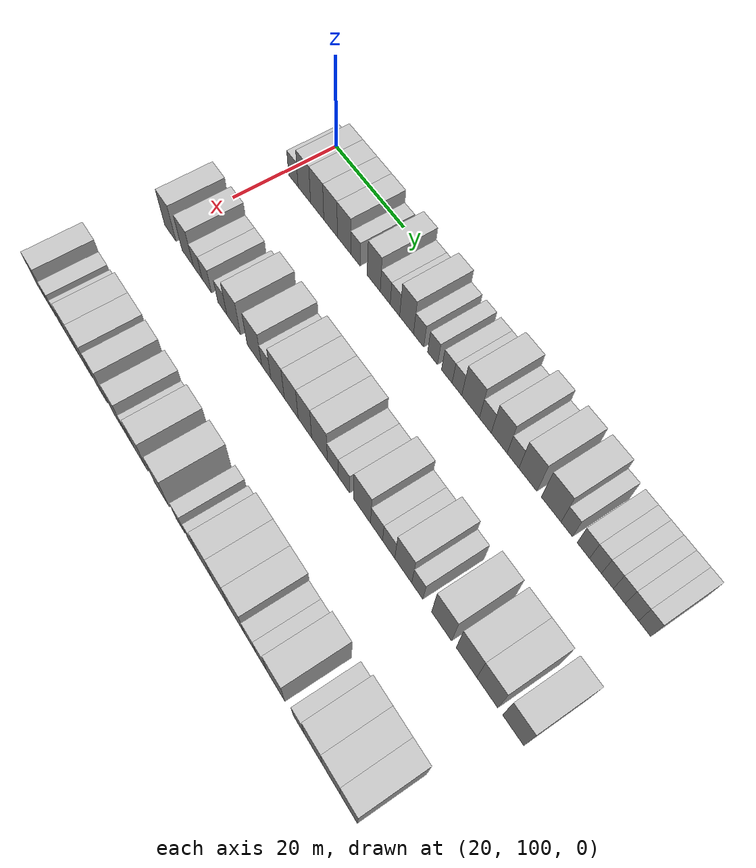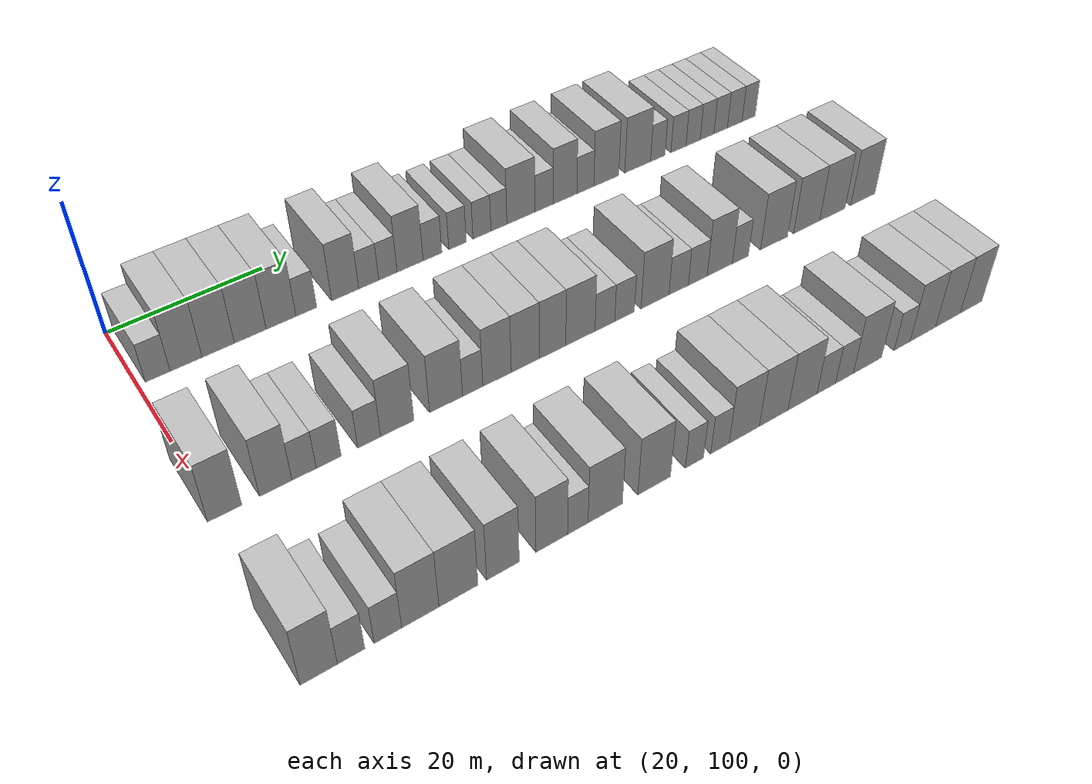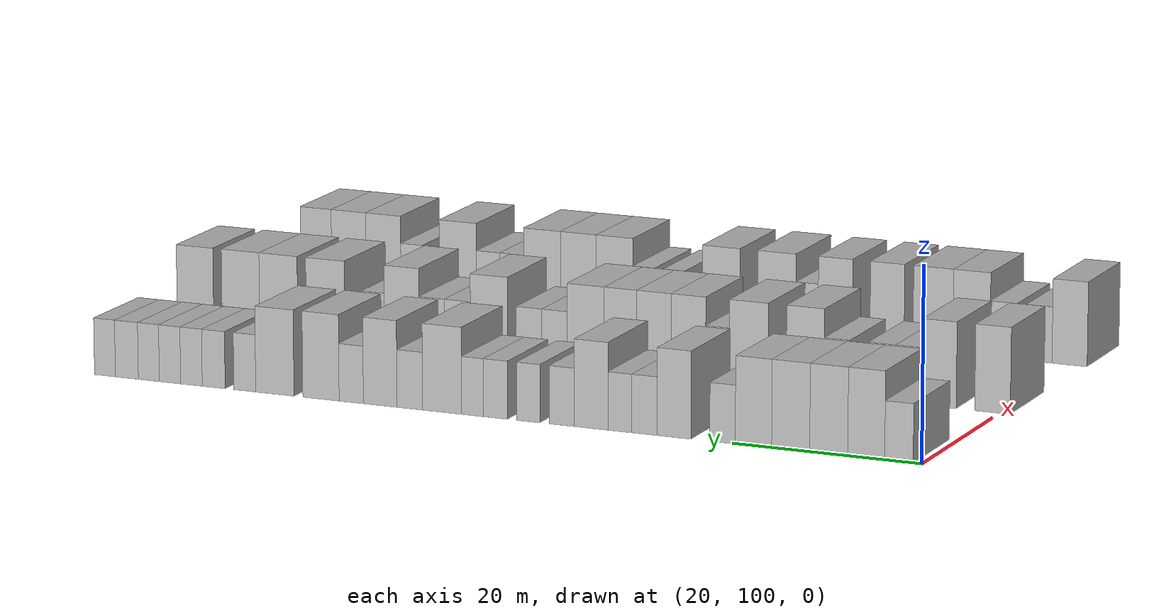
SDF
<sdf version="1.6">
 <world name="default">
  <model name="building_125">
   <static>1</static>
   <pose>25.0000 102.4084 0 0.000000 0.000000 0.000000</pose>
   <link name="link">
    <pose>0 0 3.00 0 0 0</pose>
    <collision name="collision"><geometry><box><size>10.0000 2.9845 6.0000</size></box></geometry></collision>
    <visual name="visual">
     <cast_shadows>0</cast_shadows>
     <geometry><box><size>10.0000 2.9845 6.0000</size></box></geometry>
     <material>
      <script>
       <uri>model://HANNAS_wall/materials/scripts</uri>
       <uri>model://HANNAS_wall/materials/textures</uri>
       <name>vrc/HANNAS_wall</name>
      </script>
     </material>
    </visual>
   </link>
  </model>
  <model name="building_126">
   <static>1</static>
   <pose>25.0000 105.8466 0 0.000000 0.000000 0.000000</pose>
   <link name="link">
    <pose>0 0 4.50 0 0 0</pose>
    <collision name="collision"><geometry><box><size>10.0000 3.8920 9.0000</size></box></geometry></collision>
    <visual name="visual">
     <cast_shadows>0</cast_shadows>
     <geometry><box><size>10.0000 3.8920 9.0000</size></box></geometry>
     <material>
      <script>
       <uri>model://HANNAS_wall/materials/scripts</uri>
       <uri>model://HANNAS_wall/materials/textures</uri>
       <name>vrc/HANNAS_wall</name>
      </script>
     </material>
    </visual>
   </link>
  </model>
  <model name="building_127">
   <static>1</static>
   <pose>25.0000 109.8051 0 0.000000 0.000000 0.000000</pose>
   <link name="link">
    <pose>0 0 4.50 0 0 0</pose>
    <collision name="collision"><geometry><box><size>10.0000 4.0249 9.0000</size></box></geometry></collision>
    <visual name="visual">
     <cast_shadows>0</cast_shadows>
     <geometry><box><size>10.0000 4.0249 9.0000</size></box></geometry>
     <material>
      <script>
       <uri>model://HANNAS_wall/materials/scripts</uri>
       <uri>model://HANNAS_wall/materials/textures</uri>
       <name>vrc/HANNAS_wall</name>
      </script>
     </material>
    </visual>
   </link>
  </model>
  <model name="building_128">
   <static>1</static>
   <pose>25.0000 113.8377 0 0.000000 0.000000 0.000000</pose>
   <link name="link">
    <pose>0 0 4.50 0 0 0</pose>
    <collision name="collision"><geometry><box><size>10.0000 4.0403 9.0000</size></box></geometry></collision>
    <visual name="visual">
     <cast_shadows>0</cast_shadows>
     <geometry><box><size>10.0000 4.0403 9.0000</size></box></geometry>
     <material>
      <script>
       <uri>model://HANNAS_wall/materials/scripts</uri>
       <uri>model://HANNAS_wall/materials/textures</uri>
       <name>vrc/HANNAS_wall</name>
      </script>
     </material>
    </visual>
   </link>
  </model>
  <model name="building_129">
   <static>1</static>
   <pose>25.0000 117.7990 0 0.000000 0.000000 0.000000</pose>
   <link name="link">
    <pose>0 0 4.50 0 0 0</pose>
    <collision name="collision"><geometry><box><size>10.0000 3.8824 9.0000</size></box></geometry></collision>
    <visual name="visual">
     <cast_shadows>0</cast_shadows>
     <geometry><box><size>10.0000 3.8824 9.0000</size></box></geometry>
     <material>
      <script>
       <uri>model://HANNAS_wall/materials/scripts</uri>
       <uri>model://HANNAS_wall/materials/textures</uri>
       <name>vrc/HANNAS_wall</name>
      </script>
     </material>
    </visual>
   </link>
  </model>
  <model name="building_130">
   <static>1</static>
   <pose>25.0000 121.1046 0 0.000000 0.000000 0.000000</pose>
   <link name="link">
    <pose>0 0 3.00 0 0 0</pose>
    <collision name="collision"><geometry><box><size>10.0000 2.7288 6.0000</size></box></geometry></collision>
    <visual name="visual">
     <cast_shadows>0</cast_shadows>
     <geometry><box><size>10.0000 2.7288 6.0000</size></box></geometry>
     <material>
      <script>
       <uri>model://HANNAS_wall/materials/scripts</uri>
       <uri>model://HANNAS_wall/materials/textures</uri>
       <name>vrc/HANNAS_wall</name>
      </script>
     </material>
    </visual>
   </link>
  </model>
  <model name="building_131">
   <static>1</static>
   <pose>25.0000 126.3078 0 0.000000 0.000000 0.000000</pose>
   <link name="link">
    <pose>0 0 4.50 0 0 0</pose>
    <collision name="collision"><geometry><box><size>10.0000 3.6775 9.0000</size></box></geometry></collision>
    <visual name="visual">
     <cast_shadows>0</cast_shadows>
     <geometry><box><size>10.0000 3.6775 9.0000</size></box></geometry>
     <material>
      <script>
       <uri>model://HANNAS_wall/materials/scripts</uri>
       <uri>model://HANNAS_wall/materials/textures</uri>
       <name>vrc/HANNAS_wall</name>
      </script>
     </material>
    </visual>
   </link>
  </model>
  <model name="building_132">
   <static>1</static>
   <pose>25.0000 129.5238 0 0.000000 0.000000 0.000000</pose>
   <link name="link">
    <pose>0 0 3.00 0 0 0</pose>
    <collision name="collision"><geometry><box><size>10.0000 2.7546 6.0000</size></box></geometry></collision>
    <visual name="visual">
     <cast_shadows>0</cast_shadows>
     <geometry><box><size>10.0000 2.7546 6.0000</size></box></geometry>
     <material>
      <script>
       <uri>model://HANNAS_wall/materials/scripts</uri>
       <uri>model://HANNAS_wall/materials/textures</uri>
       <name>vrc/HANNAS_wall</name>
      </script>
     </material>
    </visual>
   </link>
  </model>
  <model name="building_133">
   <static>1</static>
   <pose>25.0000 132.1846 0 0.000000 0.000000 0.000000</pose>
   <link name="link">
    <pose>0 0 3.00 0 0 0</pose>
    <collision name="collision"><geometry><box><size>10.0000 2.5670 6.0000</size></box></geometry></collision>
    <visual name="visual">
     <cast_shadows>0</cast_shadows>
     <geometry><box><size>10.0000 2.5670 6.0000</size></box></geometry>
     <material>
      <script>
       <uri>model://HANNAS_wall/materials/scripts</uri>
       <uri>model://HANNAS_wall/materials/textures</uri>
       <name>vrc/HANNAS_wall</name>
      </script>
     </material>
    </visual>
   </link>
  </model>
  <model name="building_134">
   <static>1</static>
   <pose>25.0000 135.3203 0 0.000000 0.000000 0.000000</pose>
   <link name="link">
    <pose>0 0 4.50 0 0 0</pose>
    <collision name="collision"><geometry><box><size>10.0000 3.7045 9.0000</size></box></geometry></collision>
    <visual name="visual">
     <cast_shadows>0</cast_shadows>
     <geometry><box><size>10.0000 3.7045 9.0000</size></box></geometry>
     <material>
      <script>
       <uri>model://HANNAS_wall/materials/scripts</uri>
       <uri>model://HANNAS_wall/materials/textures</uri>
       <name>vrc/HANNAS_wall</name>
      </script>
     </material>
    </visual>
   </link>
  </model>
  <model name="building_135">
   <static>1</static>
   <pose>25.0000 138.5303 0 0.000000 0.000000 0.000000</pose>
   <link name="link">
    <pose>0 0 3.00 0 0 0</pose>
    <collision name="collision"><geometry><box><size>10.0000 2.7154 6.0000</size></box></geometry></collision>
    <visual name="visual">
     <cast_shadows>0</cast_shadows>
     <geometry><box><size>10.0000 2.7154 6.0000</size></box></geometry>
     <material>
      <script>
       <uri>model://HANNAS_wall/materials/scripts</uri>
       <uri>model://HANNAS_wall/materials/textures</uri>
       <name>vrc/HANNAS_wall</name>
      </script>
     </material>
    </visual>
   </link>
  </model>
  <model name="building_136">
   <static>1</static>
   <pose>25.0000 142.1720 0 0.000000 0.000000 0.000000</pose>
   <link name="link">
    <pose>0 0 3.00 0 0 0</pose>
    <collision name="collision"><geometry><box><size>10.0000 2.5681 6.0000</size></box></geometry></collision>
    <visual name="visual">
     <cast_shadows>0</cast_shadows>
     <geometry><box><size>10.0000 2.5681 6.0000</size></box></geometry>
     <material>
      <script>
       <uri>model://HANNAS_wall/materials/scripts</uri>
       <uri>model://HANNAS_wall/materials/textures</uri>
       <name>vrc/HANNAS_wall</name>
      </script>
     </material>
    </visual>
   </link>
  </model>
  <model name="building_137">
   <static>1</static>
   <pose>25.0000 145.7974 0 0.000000 0.000000 0.000000</pose>
   <link name="link">
    <pose>0 0 3.00 0 0 0</pose>
    <collision name="collision"><geometry><box><size>10.0000 2.6828 6.0000</size></box></geometry></collision>
    <visual name="visual">
     <cast_shadows>0</cast_shadows>
     <geometry><box><size>10.0000 2.6828 6.0000</size></box></geometry>
     <material>
      <script>
       <uri>model://HANNAS_wall/materials/scripts</uri>
       <uri>model://HANNAS_wall/materials/textures</uri>
       <name>vrc/HANNAS_wall</name>
      </script>
     </material>
    </visual>
   </link>
  </model>
  <model name="building_138">
   <static>1</static>
   <pose>25.0000 148.3470 0 0.000000 0.000000 0.000000</pose>
   <link name="link">
    <pose>0 0 3.00 0 0 0</pose>
    <collision name="collision"><geometry><box><size>10.0000 2.4164 6.0000</size></box></geometry></collision>
    <visual name="visual">
     <cast_shadows>0</cast_shadows>
     <geometry><box><size>10.0000 2.4164 6.0000</size></box></geometry>
     <material>
      <script>
       <uri>model://HANNAS_wall/materials/scripts</uri>
       <uri>model://HANNAS_wall/materials/textures</uri>
       <name>vrc/HANNAS_wall</name>
      </script>
     </material>
    </visual>
   </link>
  </model>
  <model name="building_139">
   <static>1</static>
   <pose>25.0000 151.7195 0 0.000000 0.000000 0.000000</pose>
   <link name="link">
    <pose>0 0 4.50 0 0 0</pose>
    <collision name="collision"><geometry><box><size>10.0000 4.3285 9.0000</size></box></geometry></collision>
    <visual name="visual">
     <cast_shadows>0</cast_shadows>
     <geometry><box><size>10.0000 4.3285 9.0000</size></box></geometry>
     <material>
      <script>
       <uri>model://HANNAS_wall/materials/scripts</uri>
       <uri>model://HANNAS_wall/materials/textures</uri>
       <name>vrc/HANNAS_wall</name>
      </script>
     </material>
    </visual>
   </link>
  </model>
  <model name="building_140">
   <static>1</static>
   <pose>25.0000 155.3092 0 0.000000 0.000000 0.000000</pose>
   <link name="link">
    <pose>0 0 3.00 0 0 0</pose>
    <collision name="collision"><geometry><box><size>10.0000 2.8510 6.0000</size></box></geometry></collision>
    <visual name="visual">
     <cast_shadows>0</cast_shadows>
     <geometry><box><size>10.0000 2.8510 6.0000</size></box></geometry>
     <material>
      <script>
       <uri>model://HANNAS_wall/materials/scripts</uri>
       <uri>model://HANNAS_wall/materials/textures</uri>
       <name>vrc/HANNAS_wall</name>
      </script>
     </material>
    </visual>
   </link>
  </model>
  <model name="building_141">
   <static>1</static>
   <pose>25.0000 158.6175 0 0.000000 0.000000 0.000000</pose>
   <link name="link">
    <pose>0 0 4.50 0 0 0</pose>
    <collision name="collision"><geometry><box><size>10.0000 3.7657 9.0000</size></box></geometry></collision>
    <visual name="visual">
     <cast_shadows>0</cast_shadows>
     <geometry><box><size>10.0000 3.7657 9.0000</size></box></geometry>
     <material>
      <script>
       <uri>model://HANNAS_wall/materials/scripts</uri>
       <uri>model://HANNAS_wall/materials/textures</uri>
       <name>vrc/HANNAS_wall</name>
      </script>
     </material>
    </visual>
   </link>
  </model>
  <model name="building_142">
   <static>1</static>
   <pose>25.0000 161.8633 0 0.000000 0.000000 0.000000</pose>
   <link name="link">
    <pose>0 0 3.00 0 0 0</pose>
    <collision name="collision"><geometry><box><size>10.0000 2.7259 6.0000</size></box></geometry></collision>
    <visual name="visual">
     <cast_shadows>0</cast_shadows>
     <geometry><box><size>10.0000 2.7259 6.0000</size></box></geometry>
     <material>
      <script>
       <uri>model://HANNAS_wall/materials/scripts</uri>
       <uri>model://HANNAS_wall/materials/textures</uri>
       <name>vrc/HANNAS_wall</name>
      </script>
     </material>
    </visual>
   </link>
  </model>
  <model name="building_143">
   <static>1</static>
   <pose>25.0000 165.2743 0 0.000000 0.000000 0.000000</pose>
   <link name="link">
    <pose>0 0 4.50 0 0 0</pose>
    <collision name="collision"><geometry><box><size>10.0000 4.0960 9.0000</size></box></geometry></collision>
    <visual name="visual">
     <cast_shadows>0</cast_shadows>
     <geometry><box><size>10.0000 4.0960 9.0000</size></box></geometry>
     <material>
      <script>
       <uri>model://HANNAS_wall/materials/scripts</uri>
       <uri>model://HANNAS_wall/materials/textures</uri>
       <name>vrc/HANNAS_wall</name>
      </script>
     </material>
    </visual>
   </link>
  </model>
  <model name="building_144">
   <static>1</static>
   <pose>25.0000 170.4982 0 0.000000 0.000000 0.000000</pose>
   <link name="link">
    <pose>0 0 4.50 0 0 0</pose>
    <collision name="collision"><geometry><box><size>10.0000 4.3519 9.0000</size></box></geometry></collision>
    <visual name="visual">
     <cast_shadows>0</cast_shadows>
     <geometry><box><size>10.0000 4.3519 9.0000</size></box></geometry>
     <material>
      <script>
       <uri>model://HANNAS_wall/materials/scripts</uri>
       <uri>model://HANNAS_wall/materials/textures</uri>
       <name>vrc/HANNAS_wall</name>
      </script>
     </material>
    </visual>
   </link>
  </model>
  <model name="building_145">
   <static>1</static>
   <pose>25.0000 173.9182 0 0.000000 0.000000 0.000000</pose>
   <link name="link">
    <pose>0 0 3.00 0 0 0</pose>
    <collision name="collision"><geometry><box><size>10.0000 2.4882 6.0000</size></box></geometry></collision>
    <visual name="visual">
     <cast_shadows>0</cast_shadows>
     <geometry><box><size>10.0000 2.4882 6.0000</size></box></geometry>
     <material>
      <script>
       <uri>model://HANNAS_wall/materials/scripts</uri>
       <uri>model://HANNAS_wall/materials/textures</uri>
       <name>vrc/HANNAS_wall</name>
      </script>
     </material>
    </visual>
   </link>
  </model>
  <model name="building_146">
   <static>1</static>
   <pose>25.0000 177.4719 0 0.000000 0.000000 0.000000</pose>
   <link name="link">
    <pose>0 0 3.00 0 0 0</pose>
    <collision name="collision"><geometry><box><size>10.0000 2.6191 6.0000</size></box></geometry></collision>
    <visual name="visual">
     <cast_shadows>0</cast_shadows>
     <geometry><box><size>10.0000 2.6191 6.0000</size></box></geometry>
     <material>
      <script>
       <uri>model://HANNAS_wall/materials/scripts</uri>
       <uri>model://HANNAS_wall/materials/textures</uri>
       <name>vrc/HANNAS_wall</name>
      </script>
     </material>
    </visual>
   </link>
  </model>
  <model name="building_147">
   <static>1</static>
   <pose>25.0000 180.0221 0 0.000000 0.000000 0.000000</pose>
   <link name="link">
    <pose>0 0 3.00 0 0 0</pose>
    <collision name="collision"><geometry><box><size>10.0000 2.4813 6.0000</size></box></geometry></collision>
    <visual name="visual">
     <cast_shadows>0</cast_shadows>
     <geometry><box><size>10.0000 2.4813 6.0000</size></box></geometry>
     <material>
      <script>
       <uri>model://HANNAS_wall/materials/scripts</uri>
       <uri>model://HANNAS_wall/materials/textures</uri>
       <name>vrc/HANNAS_wall</name>
      </script>
     </material>
    </visual>
   </link>
  </model>
  <model name="building_148">
   <static>1</static>
   <pose>25.0000 182.4896 0 0.000000 0.000000 0.000000</pose>
   <link name="link">
    <pose>0 0 3.00 0 0 0</pose>
    <collision name="collision"><geometry><box><size>10.0000 2.4538 6.0000</size></box></geometry></collision>
    <visual name="visual">
     <cast_shadows>0</cast_shadows>
     <geometry><box><size>10.0000 2.4538 6.0000</size></box></geometry>
     <material>
      <script>
       <uri>model://HANNAS_wall/materials/scripts</uri>
       <uri>model://HANNAS_wall/materials/textures</uri>
       <name>vrc/HANNAS_wall</name>
      </script>
     </material>
    </visual>
   </link>
  </model>
  <model name="building_149">
   <static>1</static>
   <pose>25.0000 184.9301 0 0.000000 0.000000 0.000000</pose>
   <link name="link">
    <pose>0 0 3.00 0 0 0</pose>
    <collision name="collision"><geometry><box><size>10.0000 2.4274 6.0000</size></box></geometry></collision>
    <visual name="visual">
     <cast_shadows>0</cast_shadows>
     <geometry><box><size>10.0000 2.4274 6.0000</size></box></geometry>
     <material>
      <script>
       <uri>model://HANNAS_wall/materials/scripts</uri>
       <uri>model://HANNAS_wall/materials/textures</uri>
       <name>vrc/HANNAS_wall</name>
      </script>
     </material>
    </visual>
   </link>
  </model>
  <model name="building_150">
   <static>1</static>
   <pose>25.0000 187.4732 0 0.000000 0.000000 0.000000</pose>
   <link name="link">
    <pose>0 0 3.00 0 0 0</pose>
    <collision name="collision"><geometry><box><size>10.0000 2.6587 6.0000</size></box></geometry></collision>
    <visual name="visual">
     <cast_shadows>0</cast_shadows>
     <geometry><box><size>10.0000 2.6587 6.0000</size></box></geometry>
     <material>
      <script>
       <uri>model://HANNAS_wall/materials/scripts</uri>
       <uri>model://HANNAS_wall/materials/textures</uri>
       <name>vrc/HANNAS_wall</name>
      </script>
     </material>
    </visual>
   </link>
  </model>
  <model name="building_151">
   <static>1</static>
   <pose>25.0000 190.0122 0 0.000000 0.000000 0.000000</pose>
   <link name="link">
    <pose>0 0 3.00 0 0 0</pose>
    <collision name="collision"><geometry><box><size>10.0000 2.4194 6.0000</size></box></geometry></collision>
    <visual name="visual">
     <cast_shadows>0</cast_shadows>
     <geometry><box><size>10.0000 2.4194 6.0000</size></box></geometry>
     <material>
      <script>
       <uri>model://HANNAS_wall/materials/scripts</uri>
       <uri>model://HANNAS_wall/materials/textures</uri>
       <name>vrc/HANNAS_wall</name>
      </script>
     </material>
    </visual>
   </link>
  </model>
  <model name="building_326">
   <static>1</static>
   <pose>47.0000 100.7860 0 0.000000 0.000000 0.000000</pose>
   <link name="link">
    <pose>0 0 4.50 0 0 0</pose>
    <collision name="collision"><geometry><box><size>10.0000 3.8102 9.0000</size></box></geometry></collision>
    <visual name="visual">
     <cast_shadows>0</cast_shadows>
     <geometry><box><size>10.0000 3.8102 9.0000</size></box></geometry>
     <material>
      <script>
       <uri>model://HANNAS_wall/materials/scripts</uri>
       <uri>model://HANNAS_wall/materials/textures</uri>
       <name>vrc/HANNAS_wall</name>
      </script>
     </material>
    </visual>
   </link>
  </model>
  <model name="building_327">
   <static>1</static>
   <pose>47.0000 106.5540 0 0.000000 0.000000 0.000000</pose>
   <link name="link">
    <pose>0 0 4.50 0 0 0</pose>
    <collision name="collision"><geometry><box><size>10.0000 3.7258 9.0000</size></box></geometry></collision>
    <visual name="visual">
     <cast_shadows>0</cast_shadows>
     <geometry><box><size>10.0000 3.7258 9.0000</size></box></geometry>
     <material>
      <script>
       <uri>model://HANNAS_wall/materials/scripts</uri>
       <uri>model://HANNAS_wall/materials/textures</uri>
       <name>vrc/HANNAS_wall</name>
      </script>
     </material>
    </visual>
   </link>
  </model>
  <model name="building_328">
   <static>1</static>
   <pose>47.0000 109.8376 0 0.000000 0.000000 0.000000</pose>
   <link name="link">
    <pose>0 0 3.00 0 0 0</pose>
    <collision name="collision"><geometry><box><size>10.0000 2.8415 6.0000</size></box></geometry></collision>
    <visual name="visual">
     <cast_shadows>0</cast_shadows>
     <geometry><box><size>10.0000 2.8415 6.0000</size></box></geometry>
     <material>
      <script>
       <uri>model://HANNAS_wall/materials/scripts</uri>
       <uri>model://HANNAS_wall/materials/textures</uri>
       <name>vrc/HANNAS_wall</name>
      </script>
     </material>
    </visual>
   </link>
  </model>
  <model name="building_329">
   <static>1</static>
   <pose>47.0000 112.7442 0 0.000000 0.000000 0.000000</pose>
   <link name="link">
    <pose>0 0 3.00 0 0 0</pose>
    <collision name="collision"><geometry><box><size>10.0000 2.9716 6.0000</size></box></geometry></collision>
    <visual name="visual">
     <cast_shadows>0</cast_shadows>
     <geometry><box><size>10.0000 2.9716 6.0000</size></box></geometry>
     <material>
      <script>
       <uri>model://HANNAS_wall/materials/scripts</uri>
       <uri>model://HANNAS_wall/materials/textures</uri>
       <name>vrc/HANNAS_wall</name>
      </script>
     </material>
    </visual>
   </link>
  </model>
  <model name="building_330">
   <static>1</static>
   <pose>47.0000 117.6304 0 0.000000 0.000000 0.000000</pose>
   <link name="link">
    <pose>0 0 3.00 0 0 0</pose>
    <collision name="collision"><geometry><box><size>10.0000 2.8007 6.0000</size></box></geometry></collision>
    <visual name="visual">
     <cast_shadows>0</cast_shadows>
     <geometry><box><size>10.0000 2.8007 6.0000</size></box></geometry>
     <material>
      <script>
       <uri>model://HANNAS_wall/materials/scripts</uri>
       <uri>model://HANNAS_wall/materials/textures</uri>
       <name>vrc/HANNAS_wall</name>
      </script>
     </material>
    </visual>
   </link>
  </model>
  <model name="building_331">
   <static>1</static>
   <pose>47.0000 121.1151 0 0.000000 0.000000 0.000000</pose>
   <link name="link">
    <pose>0 0 4.50 0 0 0</pose>
    <collision name="collision"><geometry><box><size>10.0000 4.1689 9.0000</size></box></geometry></collision>
    <visual name="visual">
     <cast_shadows>0</cast_shadows>
     <geometry><box><size>10.0000 4.1689 9.0000</size></box></geometry>
     <material>
      <script>
       <uri>model://HANNAS_wall/materials/scripts</uri>
       <uri>model://HANNAS_wall/materials/textures</uri>
       <name>vrc/HANNAS_wall</name>
      </script>
     </material>
    </visual>
   </link>
  </model>
  <model name="building_332">
   <static>1</static>
   <pose>47.0000 127.3344 0 0.000000 0.000000 0.000000</pose>
   <link name="link">
    <pose>0 0 4.50 0 0 0</pose>
    <collision name="collision"><geometry><box><size>10.0000 4.2697 9.0000</size></box></geometry></collision>
    <visual name="visual">
     <cast_shadows>0</cast_shadows>
     <geometry><box><size>10.0000 4.2697 9.0000</size></box></geometry>
     <material>
      <script>
       <uri>model://HANNAS_wall/materials/scripts</uri>
       <uri>model://HANNAS_wall/materials/textures</uri>
       <name>vrc/HANNAS_wall</name>
      </script>
     </material>
    </visual>
   </link>
  </model>
  <model name="building_333">
   <static>1</static>
   <pose>47.0000 130.7991 0 0.000000 0.000000 0.000000</pose>
   <link name="link">
    <pose>0 0 3.00 0 0 0</pose>
    <collision name="collision"><geometry><box><size>10.0000 2.6597 6.0000</size></box></geometry></collision>
    <visual name="visual">
     <cast_shadows>0</cast_shadows>
     <geometry><box><size>10.0000 2.6597 6.0000</size></box></geometry>
     <material>
      <script>
       <uri>model://HANNAS_wall/materials/scripts</uri>
       <uri>model://HANNAS_wall/materials/textures</uri>
       <name>vrc/HANNAS_wall</name>
      </script>
     </material>
    </visual>
   </link>
  </model>
  <model name="building_334">
   <static>1</static>
   <pose>47.0000 134.0427 0 0.000000 0.000000 0.000000</pose>
   <link name="link">
    <pose>0 0 4.50 0 0 0</pose>
    <collision name="collision"><geometry><box><size>10.0000 3.8276 9.0000</size></box></geometry></collision>
    <visual name="visual">
     <cast_shadows>0</cast_shadows>
     <geometry><box><size>10.0000 3.8276 9.0000</size></box></geometry>
     <material>
      <script>
       <uri>model://HANNAS_wall/materials/scripts</uri>
       <uri>model://HANNAS_wall/materials/textures</uri>
       <name>vrc/HANNAS_wall</name>
      </script>
     </material>
    </visual>
   </link>
  </model>
  <model name="building_335">
   <static>1</static>
   <pose>47.0000 137.8854 0 0.000000 0.000000 0.000000</pose>
   <link name="link">
    <pose>0 0 4.50 0 0 0</pose>
    <collision name="collision"><geometry><box><size>10.0000 3.8579 9.0000</size></box></geometry></collision>
    <visual name="visual">
     <cast_shadows>0</cast_shadows>
     <geometry><box><size>10.0000 3.8579 9.0000</size></box></geometry>
     <material>
      <script>
       <uri>model://HANNAS_wall/materials/scripts</uri>
       <uri>model://HANNAS_wall/materials/textures</uri>
       <name>vrc/HANNAS_wall</name>
      </script>
     </material>
    </visual>
   </link>
  </model>
  <model name="building_336">
   <static>1</static>
   <pose>47.0000 141.6507 0 0.000000 0.000000 0.000000</pose>
   <link name="link">
    <pose>0 0 4.50 0 0 0</pose>
    <collision name="collision"><geometry><box><size>10.0000 3.6726 9.0000</size></box></geometry></collision>
    <visual name="visual">
     <cast_shadows>0</cast_shadows>
     <geometry><box><size>10.0000 3.6726 9.0000</size></box></geometry>
     <material>
      <script>
       <uri>model://HANNAS_wall/materials/scripts</uri>
       <uri>model://HANNAS_wall/materials/textures</uri>
       <name>vrc/HANNAS_wall</name>
      </script>
     </material>
    </visual>
   </link>
  </model>
  <model name="building_337">
   <static>1</static>
   <pose>47.0000 145.5755 0 0.000000 0.000000 0.000000</pose>
   <link name="link">
    <pose>0 0 4.50 0 0 0</pose>
    <collision name="collision"><geometry><box><size>10.0000 4.1769 9.0000</size></box></geometry></collision>
    <visual name="visual">
     <cast_shadows>0</cast_shadows>
     <geometry><box><size>10.0000 4.1769 9.0000</size></box></geometry>
     <material>
      <script>
       <uri>model://HANNAS_wall/materials/scripts</uri>
       <uri>model://HANNAS_wall/materials/textures</uri>
       <name>vrc/HANNAS_wall</name>
      </script>
     </material>
    </visual>
   </link>
  </model>
  <model name="building_338">
   <static>1</static>
   <pose>47.0000 149.0983 0 0.000000 0.000000 0.000000</pose>
   <link name="link">
    <pose>0 0 3.00 0 0 0</pose>
    <collision name="collision"><geometry><box><size>10.0000 2.8688 6.0000</size></box></geometry></collision>
    <visual name="visual">
     <cast_shadows>0</cast_shadows>
     <geometry><box><size>10.0000 2.8688 6.0000</size></box></geometry>
     <material>
      <script>
       <uri>model://HANNAS_wall/materials/scripts</uri>
       <uri>model://HANNAS_wall/materials/textures</uri>
       <name>vrc/HANNAS_wall</name>
      </script>
     </material>
    </visual>
   </link>
  </model>
  <model name="building_339">
   <static>1</static>
   <pose>47.0000 151.9835 0 0.000000 0.000000 0.000000</pose>
   <link name="link">
    <pose>0 0 3.00 0 0 0</pose>
    <collision name="collision"><geometry><box><size>10.0000 2.9016 6.0000</size></box></geometry></collision>
    <visual name="visual">
     <cast_shadows>0</cast_shadows>
     <geometry><box><size>10.0000 2.9016 6.0000</size></box></geometry>
     <material>
      <script>
       <uri>model://HANNAS_wall/materials/scripts</uri>
       <uri>model://HANNAS_wall/materials/textures</uri>
       <name>vrc/HANNAS_wall</name>
      </script>
     </material>
    </visual>
   </link>
  </model>
  <model name="building_340">
   <static>1</static>
   <pose>47.0000 156.5500 0 0.000000 0.000000 0.000000</pose>
   <link name="link">
    <pose>0 0 4.50 0 0 0</pose>
    <collision name="collision"><geometry><box><size>10.0000 4.2314 9.0000</size></box></geometry></collision>
    <visual name="visual">
     <cast_shadows>0</cast_shadows>
     <geometry><box><size>10.0000 4.2314 9.0000</size></box></geometry>
     <material>
      <script>
       <uri>model://HANNAS_wall/materials/scripts</uri>
       <uri>model://HANNAS_wall/materials/textures</uri>
       <name>vrc/HANNAS_wall</name>
      </script>
     </material>
    </visual>
   </link>
  </model>
  <model name="building_341">
   <static>1</static>
   <pose>47.0000 160.1545 0 0.000000 0.000000 0.000000</pose>
   <link name="link">
    <pose>0 0 3.00 0 0 0</pose>
    <collision name="collision"><geometry><box><size>10.0000 2.9775 6.0000</size></box></geometry></collision>
    <visual name="visual">
     <cast_shadows>0</cast_shadows>
     <geometry><box><size>10.0000 2.9775 6.0000</size></box></geometry>
     <material>
      <script>
       <uri>model://HANNAS_wall/materials/scripts</uri>
       <uri>model://HANNAS_wall/materials/textures</uri>
       <name>vrc/HANNAS_wall</name>
      </script>
     </material>
    </visual>
   </link>
  </model>
  <model name="building_342">
   <static>1</static>
   <pose>47.0000 163.1173 0 0.000000 0.000000 0.000000</pose>
   <link name="link">
    <pose>0 0 3.00 0 0 0</pose>
    <collision name="collision"><geometry><box><size>10.0000 2.9481 6.0000</size></box></geometry></collision>
    <visual name="visual">
     <cast_shadows>0</cast_shadows>
     <geometry><box><size>10.0000 2.9481 6.0000</size></box></geometry>
     <material>
      <script>
       <uri>model://HANNAS_wall/materials/scripts</uri>
       <uri>model://HANNAS_wall/materials/textures</uri>
       <name>vrc/HANNAS_wall</name>
      </script>
     </material>
    </visual>
   </link>
  </model>
  <model name="building_343">
   <static>1</static>
   <pose>47.0000 166.5925 0 0.000000 0.000000 0.000000</pose>
   <link name="link">
    <pose>0 0 4.50 0 0 0</pose>
    <collision name="collision"><geometry><box><size>10.0000 4.0021 9.0000</size></box></geometry></collision>
    <visual name="visual">
     <cast_shadows>0</cast_shadows>
     <geometry><box><size>10.0000 4.0021 9.0000</size></box></geometry>
     <material>
      <script>
       <uri>model://HANNAS_wall/materials/scripts</uri>
       <uri>model://HANNAS_wall/materials/textures</uri>
       <name>vrc/HANNAS_wall</name>
      </script>
     </material>
    </visual>
   </link>
  </model>
  <model name="building_344">
   <static>1</static>
   <pose>47.0000 169.8964 0 0.000000 0.000000 0.000000</pose>
   <link name="link">
    <pose>0 0 3.00 0 0 0</pose>
    <collision name="collision"><geometry><box><size>10.0000 2.6058 6.0000</size></box></geometry></collision>
    <visual name="visual">
     <cast_shadows>0</cast_shadows>
     <geometry><box><size>10.0000 2.6058 6.0000</size></box></geometry>
     <material>
      <script>
       <uri>model://HANNAS_wall/materials/scripts</uri>
       <uri>model://HANNAS_wall/materials/textures</uri>
       <name>vrc/HANNAS_wall</name>
      </script>
     </material>
    </visual>
   </link>
  </model>
  <model name="building_345">
   <static>1</static>
   <pose>47.0000 175.4467 0 0.000000 0.000000 0.000000</pose>
   <link name="link">
    <pose>0 0 4.50 0 0 0</pose>
    <collision name="collision"><geometry><box><size>10.0000 4.4948 9.0000</size></box></geometry></collision>
    <visual name="visual">
     <cast_shadows>0</cast_shadows>
     <geometry><box><size>10.0000 4.4948 9.0000</size></box></geometry>
     <material>
      <script>
       <uri>model://HANNAS_wall/materials/scripts</uri>
       <uri>model://HANNAS_wall/materials/textures</uri>
       <name>vrc/HANNAS_wall</name>
      </script>
     </material>
    </visual>
   </link>
  </model>
  <model name="building_346">
   <static>1</static>
   <pose>47.0000 180.9318 0 0.000000 0.000000 0.000000</pose>
   <link name="link">
    <pose>0 0 4.50 0 0 0</pose>
    <collision name="collision"><geometry><box><size>10.0000 4.4754 9.0000</size></box></geometry></collision>
    <visual name="visual">
     <cast_shadows>0</cast_shadows>
     <geometry><box><size>10.0000 4.4754 9.0000</size></box></geometry>
     <material>
      <script>
       <uri>model://HANNAS_wall/materials/scripts</uri>
       <uri>model://HANNAS_wall/materials/textures</uri>
       <name>vrc/HANNAS_wall</name>
      </script>
     </material>
    </visual>
   </link>
  </model>
  <model name="building_347">
   <static>1</static>
   <pose>47.0000 185.3846 0 0.000000 0.000000 0.000000</pose>
   <link name="link">
    <pose>0 0 4.50 0 0 0</pose>
    <collision name="collision"><geometry><box><size>10.0000 4.4303 9.0000</size></box></geometry></collision>
    <visual name="visual">
     <cast_shadows>0</cast_shadows>
     <geometry><box><size>10.0000 4.4303 9.0000</size></box></geometry>
     <material>
      <script>
       <uri>model://HANNAS_wall/materials/scripts</uri>
       <uri>model://HANNAS_wall/materials/textures</uri>
       <name>vrc/HANNAS_wall</name>
      </script>
     </material>
    </visual>
   </link>
  </model>
  <model name="building_348">
   <static>1</static>
   <pose>47.0000 190.7663 0 0.000000 0.000000 0.000000</pose>
   <link name="link">
    <pose>0 0 4.50 0 0 0</pose>
    <collision name="collision"><geometry><box><size>10.0000 4.3331 9.0000</size></box></geometry></collision>
    <visual name="visual">
     <cast_shadows>0</cast_shadows>
     <geometry><box><size>10.0000 4.3331 9.0000</size></box></geometry>
     <material>
      <script>
       <uri>model://HANNAS_wall/materials/scripts</uri>
       <uri>model://HANNAS_wall/materials/textures</uri>
       <name>vrc/HANNAS_wall</name>
      </script>
     </material>
    </visual>
   </link>
  </model>
  <model name="building_513">
   <static>1</static>
   <pose>69.0000 100.3930 0 0.000000 0.000000 0.000000</pose>
   <link name="link">
    <pose>0 0 4.50 0 0 0</pose>
    <collision name="collision"><geometry><box><size>10.0000 3.8669 9.0000</size></box></geometry></collision>
    <visual name="visual">
     <cast_shadows>0</cast_shadows>
     <geometry><box><size>10.0000 3.8669 9.0000</size></box></geometry>
     <material>
      <script>
       <uri>model://HANNAS_wall/materials/scripts</uri>
       <uri>model://HANNAS_wall/materials/textures</uri>
       <name>vrc/HANNAS_wall</name>
      </script>
     </material>
    </visual>
   </link>
  </model>
  <model name="building_514">
   <static>1</static>
   <pose>69.0000 103.7671 0 0.000000 0.000000 0.000000</pose>
   <link name="link">
    <pose>0 0 3.00 0 0 0</pose>
    <collision name="collision"><geometry><box><size>10.0000 2.8815 6.0000</size></box></geometry></collision>
    <visual name="visual">
     <cast_shadows>0</cast_shadows>
     <geometry><box><size>10.0000 2.8815 6.0000</size></box></geometry>
     <material>
      <script>
       <uri>model://HANNAS_wall/materials/scripts</uri>
       <uri>model://HANNAS_wall/materials/textures</uri>
       <name>vrc/HANNAS_wall</name>
      </script>
     </material>
    </visual>
   </link>
  </model>
  <model name="building_515">
   <static>1</static>
   <pose>69.0000 107.6984 0 0.000000 0.000000 0.000000</pose>
   <link name="link">
    <pose>0 0 3.00 0 0 0</pose>
    <collision name="collision"><geometry><box><size>10.0000 2.9811 6.0000</size></box></geometry></collision>
    <visual name="visual">
     <cast_shadows>0</cast_shadows>
     <geometry><box><size>10.0000 2.9811 6.0000</size></box></geometry>
     <material>
      <script>
       <uri>model://HANNAS_wall/materials/scripts</uri>
       <uri>model://HANNAS_wall/materials/textures</uri>
       <name>vrc/HANNAS_wall</name>
      </script>
     </material>
    </visual>
   </link>
  </model>
  <model name="building_516">
   <static>1</static>
   <pose>69.0000 111.2586 0 0.000000 0.000000 0.000000</pose>
   <link name="link">
    <pose>0 0 4.50 0 0 0</pose>
    <collision name="collision"><geometry><box><size>10.0000 4.1393 9.0000</size></box></geometry></collision>
    <visual name="visual">
     <cast_shadows>0</cast_shadows>
     <geometry><box><size>10.0000 4.1393 9.0000</size></box></geometry>
     <material>
      <script>
       <uri>model://HANNAS_wall/materials/scripts</uri>
       <uri>model://HANNAS_wall/materials/textures</uri>
       <name>vrc/HANNAS_wall</name>
      </script>
     </material>
    </visual>
   </link>
  </model>
  <model name="building_517">
   <static>1</static>
   <pose>69.0000 115.5510 0 0.000000 0.000000 0.000000</pose>
   <link name="link">
    <pose>0 0 4.50 0 0 0</pose>
    <collision name="collision"><geometry><box><size>10.0000 4.4456 9.0000</size></box></geometry></collision>
    <visual name="visual">
     <cast_shadows>0</cast_shadows>
     <geometry><box><size>10.0000 4.4456 9.0000</size></box></geometry>
     <material>
      <script>
       <uri>model://HANNAS_wall/materials/scripts</uri>
       <uri>model://HANNAS_wall/materials/textures</uri>
       <name>vrc/HANNAS_wall</name>
      </script>
     </material>
    </visual>
   </link>
  </model>
  <model name="building_518">
   <static>1</static>
   <pose>69.0000 120.6940 0 0.000000 0.000000 0.000000</pose>
   <link name="link">
    <pose>0 0 4.50 0 0 0</pose>
    <collision name="collision"><geometry><box><size>10.0000 3.8403 9.0000</size></box></geometry></collision>
    <visual name="visual">
     <cast_shadows>0</cast_shadows>
     <geometry><box><size>10.0000 3.8403 9.0000</size></box></geometry>
     <material>
      <script>
       <uri>model://HANNAS_wall/materials/scripts</uri>
       <uri>model://HANNAS_wall/materials/textures</uri>
       <name>vrc/HANNAS_wall</name>
      </script>
     </material>
    </visual>
   </link>
  </model>
  <model name="building_519">
   <static>1</static>
   <pose>69.0000 126.5411 0 0.000000 0.000000 0.000000</pose>
   <link name="link">
    <pose>0 0 4.50 0 0 0</pose>
    <collision name="collision"><geometry><box><size>10.0000 3.8539 9.0000</size></box></geometry></collision>
    <visual name="visual">
     <cast_shadows>0</cast_shadows>
     <geometry><box><size>10.0000 3.8539 9.0000</size></box></geometry>
     <material>
      <script>
       <uri>model://HANNAS_wall/materials/scripts</uri>
       <uri>model://HANNAS_wall/materials/textures</uri>
       <name>vrc/HANNAS_wall</name>
      </script>
     </material>
    </visual>
   </link>
  </model>
  <model name="building_520">
   <static>1</static>
   <pose>69.0000 129.7374 0 0.000000 0.000000 0.000000</pose>
   <link name="link">
    <pose>0 0 3.00 0 0 0</pose>
    <collision name="collision"><geometry><box><size>10.0000 2.5386 6.0000</size></box></geometry></collision>
    <visual name="visual">
     <cast_shadows>0</cast_shadows>
     <geometry><box><size>10.0000 2.5386 6.0000</size></box></geometry>
     <material>
      <script>
       <uri>model://HANNAS_wall/materials/scripts</uri>
       <uri>model://HANNAS_wall/materials/textures</uri>
       <name>vrc/HANNAS_wall</name>
      </script>
     </material>
    </visual>
   </link>
  </model>
  <model name="building_521">
   <static>1</static>
   <pose>69.0000 133.1971 0 0.000000 0.000000 0.000000</pose>
   <link name="link">
    <pose>0 0 4.50 0 0 0</pose>
    <collision name="collision"><geometry><box><size>10.0000 4.3809 9.0000</size></box></geometry></collision>
    <visual name="visual">
     <cast_shadows>0</cast_shadows>
     <geometry><box><size>10.0000 4.3809 9.0000</size></box></geometry>
     <material>
      <script>
       <uri>model://HANNAS_wall/materials/scripts</uri>
       <uri>model://HANNAS_wall/materials/textures</uri>
       <name>vrc/HANNAS_wall</name>
      </script>
     </material>
    </visual>
   </link>
  </model>
  <model name="building_522">
   <static>1</static>
   <pose>69.0000 139.5429 0 0.000000 0.000000 0.000000</pose>
   <link name="link">
    <pose>0 0 4.50 0 0 0</pose>
    <collision name="collision"><geometry><box><size>10.0000 4.3105 9.0000</size></box></geometry></collision>
    <visual name="visual">
     <cast_shadows>0</cast_shadows>
     <geometry><box><size>10.0000 4.3105 9.0000</size></box></geometry>
     <material>
      <script>
       <uri>model://HANNAS_wall/materials/scripts</uri>
       <uri>model://HANNAS_wall/materials/textures</uri>
       <name>vrc/HANNAS_wall</name>
      </script>
     </material>
    </visual>
   </link>
  </model>
  <model name="building_523">
   <static>1</static>
   <pose>69.0000 144.9339 0 0.000000 0.000000 0.000000</pose>
   <link name="link">
    <pose>0 0 3.00 0 0 0</pose>
    <collision name="collision"><geometry><box><size>10.0000 2.4715 6.0000</size></box></geometry></collision>
    <visual name="visual">
     <cast_shadows>0</cast_shadows>
     <geometry><box><size>10.0000 2.4715 6.0000</size></box></geometry>
     <material>
      <script>
       <uri>model://HANNAS_wall/materials/scripts</uri>
       <uri>model://HANNAS_wall/materials/textures</uri>
       <name>vrc/HANNAS_wall</name>
      </script>
     </material>
    </visual>
   </link>
  </model>
  <model name="building_524">
   <static>1</static>
   <pose>69.0000 148.4428 0 0.000000 0.000000 0.000000</pose>
   <link name="link">
    <pose>0 0 3.00 0 0 0</pose>
    <collision name="collision"><geometry><box><size>10.0000 2.5462 6.0000</size></box></geometry></collision>
    <visual name="visual">
     <cast_shadows>0</cast_shadows>
     <geometry><box><size>10.0000 2.5462 6.0000</size></box></geometry>
     <material>
      <script>
       <uri>model://HANNAS_wall/materials/scripts</uri>
       <uri>model://HANNAS_wall/materials/textures</uri>
       <name>vrc/HANNAS_wall</name>
      </script>
     </material>
    </visual>
   </link>
  </model>
  <model name="building_525">
   <static>1</static>
   <pose>69.0000 151.8575 0 0.000000 0.000000 0.000000</pose>
   <link name="link">
    <pose>0 0 4.50 0 0 0</pose>
    <collision name="collision"><geometry><box><size>10.0000 4.2833 9.0000</size></box></geometry></collision>
    <visual name="visual">
     <cast_shadows>0</cast_shadows>
     <geometry><box><size>10.0000 4.2833 9.0000</size></box></geometry>
     <material>
      <script>
       <uri>model://HANNAS_wall/materials/scripts</uri>
       <uri>model://HANNAS_wall/materials/textures</uri>
       <name>vrc/HANNAS_wall</name>
      </script>
     </material>
    </visual>
   </link>
  </model>
  <model name="building_526">
   <static>1</static>
   <pose>69.0000 156.0893 0 0.000000 0.000000 0.000000</pose>
   <link name="link">
    <pose>0 0 4.50 0 0 0</pose>
    <collision name="collision"><geometry><box><size>10.0000 4.1803 9.0000</size></box></geometry></collision>
    <visual name="visual">
     <cast_shadows>0</cast_shadows>
     <geometry><box><size>10.0000 4.1803 9.0000</size></box></geometry>
     <material>
      <script>
       <uri>model://HANNAS_wall/materials/scripts</uri>
       <uri>model://HANNAS_wall/materials/textures</uri>
       <name>vrc/HANNAS_wall</name>
      </script>
     </material>
    </visual>
   </link>
  </model>
  <model name="building_527">
   <static>1</static>
   <pose>69.0000 160.3379 0 0.000000 0.000000 0.000000</pose>
   <link name="link">
    <pose>0 0 4.50 0 0 0</pose>
    <collision name="collision"><geometry><box><size>10.0000 4.3169 9.0000</size></box></geometry></collision>
    <visual name="visual">
     <cast_shadows>0</cast_shadows>
     <geometry><box><size>10.0000 4.3169 9.0000</size></box></geometry>
     <material>
      <script>
       <uri>model://HANNAS_wall/materials/scripts</uri>
       <uri>model://HANNAS_wall/materials/textures</uri>
       <name>vrc/HANNAS_wall</name>
      </script>
     </material>
    </visual>
   </link>
  </model>
  <model name="building_528">
   <static>1</static>
   <pose>69.0000 163.9040 0 0.000000 0.000000 0.000000</pose>
   <link name="link">
    <pose>0 0 3.00 0 0 0</pose>
    <collision name="collision"><geometry><box><size>10.0000 2.8153 6.0000</size></box></geometry></collision>
    <visual name="visual">
     <cast_shadows>0</cast_shadows>
     <geometry><box><size>10.0000 2.8153 6.0000</size></box></geometry>
     <material>
      <script>
       <uri>model://HANNAS_wall/materials/scripts</uri>
       <uri>model://HANNAS_wall/materials/textures</uri>
       <name>vrc/HANNAS_wall</name>
      </script>
     </material>
    </visual>
   </link>
  </model>
  <model name="building_529">
   <static>1</static>
   <pose>69.0000 166.6796 0 0.000000 0.000000 0.000000</pose>
   <link name="link">
    <pose>0 0 3.00 0 0 0</pose>
    <collision name="collision"><geometry><box><size>10.0000 2.7359 6.0000</size></box></geometry></collision>
    <visual name="visual">
     <cast_shadows>0</cast_shadows>
     <geometry><box><size>10.0000 2.7359 6.0000</size></box></geometry>
     <material>
      <script>
       <uri>model://HANNAS_wall/materials/scripts</uri>
       <uri>model://HANNAS_wall/materials/textures</uri>
       <name>vrc/HANNAS_wall</name>
      </script>
     </material>
    </visual>
   </link>
  </model>
  <model name="building_530">
   <static>1</static>
   <pose>69.0000 170.2618 0 0.000000 0.000000 0.000000</pose>
   <link name="link">
    <pose>0 0 4.50 0 0 0</pose>
    <collision name="collision"><geometry><box><size>10.0000 4.4285 9.0000</size></box></geometry></collision>
    <visual name="visual">
     <cast_shadows>0</cast_shadows>
     <geometry><box><size>10.0000 4.4285 9.0000</size></box></geometry>
     <material>
      <script>
       <uri>model://HANNAS_wall/materials/scripts</uri>
       <uri>model://HANNAS_wall/materials/textures</uri>
       <name>vrc/HANNAS_wall</name>
      </script>
     </material>
    </visual>
   </link>
  </model>
  <model name="building_531">
   <static>1</static>
   <pose>69.0000 175.7721 0 0.000000 0.000000 0.000000</pose>
   <link name="link">
    <pose>0 0 3.00 0 0 0</pose>
    <collision name="collision"><geometry><box><size>10.0000 2.5919 6.0000</size></box></geometry></collision>
    <visual name="visual">
     <cast_shadows>0</cast_shadows>
     <geometry><box><size>10.0000 2.5919 6.0000</size></box></geometry>
     <material>
      <script>
       <uri>model://HANNAS_wall/materials/scripts</uri>
       <uri>model://HANNAS_wall/materials/textures</uri>
       <name>vrc/HANNAS_wall</name>
      </script>
     </material>
    </visual>
   </link>
  </model>
  <model name="building_532">
   <static>1</static>
   <pose>69.0000 179.1626 0 0.000000 0.000000 0.000000</pose>
   <link name="link">
    <pose>0 0 4.50 0 0 0</pose>
    <collision name="collision"><geometry><box><size>10.0000 4.1891 9.0000</size></box></geometry></collision>
    <visual name="visual">
     <cast_shadows>0</cast_shadows>
     <geometry><box><size>10.0000 4.1891 9.0000</size></box></geometry>
     <material>
      <script>
       <uri>model://HANNAS_wall/materials/scripts</uri>
       <uri>model://HANNAS_wall/materials/textures</uri>
       <name>vrc/HANNAS_wall</name>
      </script>
     </material>
    </visual>
   </link>
  </model>
  <model name="building_533">
   <static>1</static>
   <pose>69.0000 183.3265 0 0.000000 0.000000 0.000000</pose>
   <link name="link">
    <pose>0 0 4.50 0 0 0</pose>
    <collision name="collision"><geometry><box><size>10.0000 4.1388 9.0000</size></box></geometry></collision>
    <visual name="visual">
     <cast_shadows>0</cast_shadows>
     <geometry><box><size>10.0000 4.1388 9.0000</size></box></geometry>
     <material>
      <script>
       <uri>model://HANNAS_wall/materials/scripts</uri>
       <uri>model://HANNAS_wall/materials/textures</uri>
       <name>vrc/HANNAS_wall</name>
      </script>
     </material>
    </visual>
   </link>
  </model>
  <model name="building_534">
   <static>1</static>
   <pose>69.0000 187.2668 0 0.000000 0.000000 0.000000</pose>
   <link name="link">
    <pose>0 0 4.50 0 0 0</pose>
    <collision name="collision"><geometry><box><size>10.0000 3.7418 9.0000</size></box></geometry></collision>
    <visual name="visual">
     <cast_shadows>0</cast_shadows>
     <geometry><box><size>10.0000 3.7418 9.0000</size></box></geometry>
     <material>
      <script>
       <uri>model://HANNAS_wall/materials/scripts</uri>
       <uri>model://HANNAS_wall/materials/textures</uri>
       <name>vrc/HANNAS_wall</name>
      </script>
     </material>
    </visual>
   </link>
  </model>
 </world>
</sdf>
